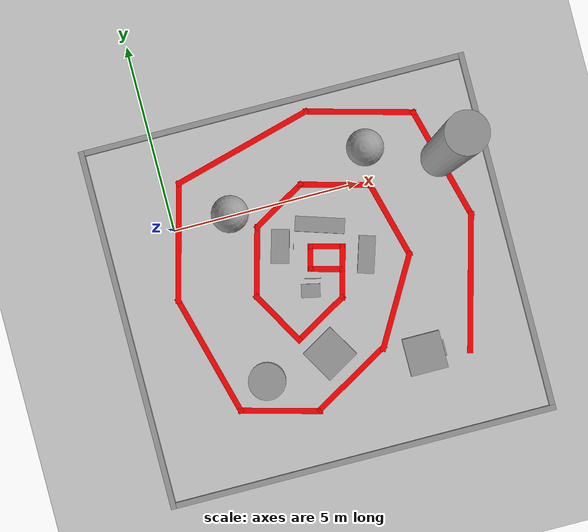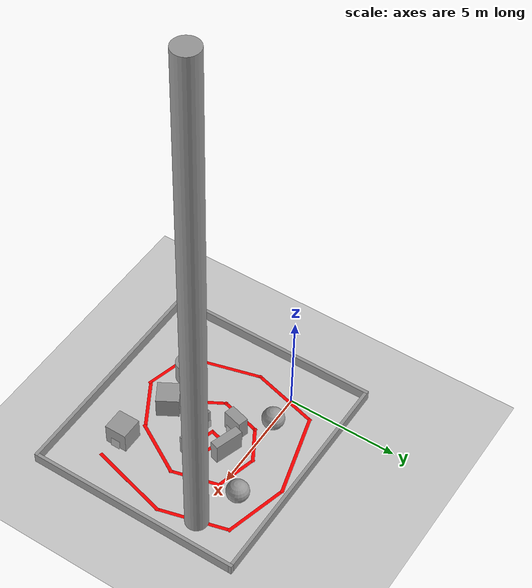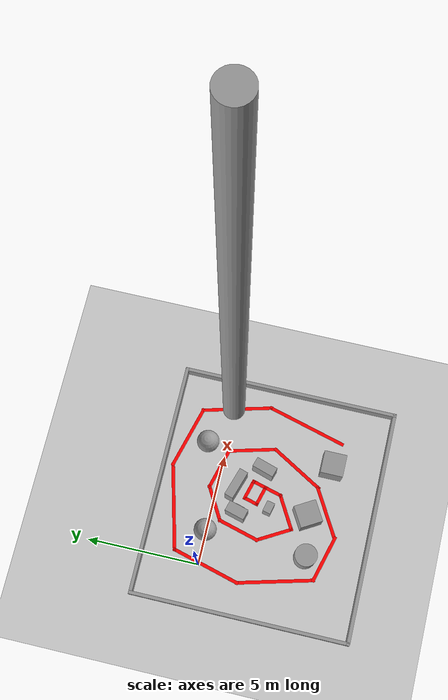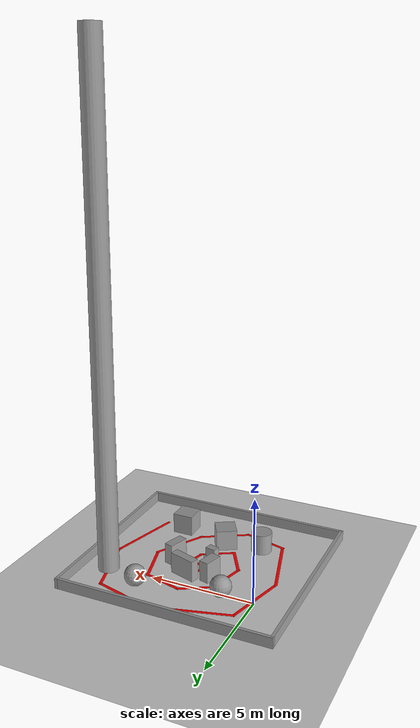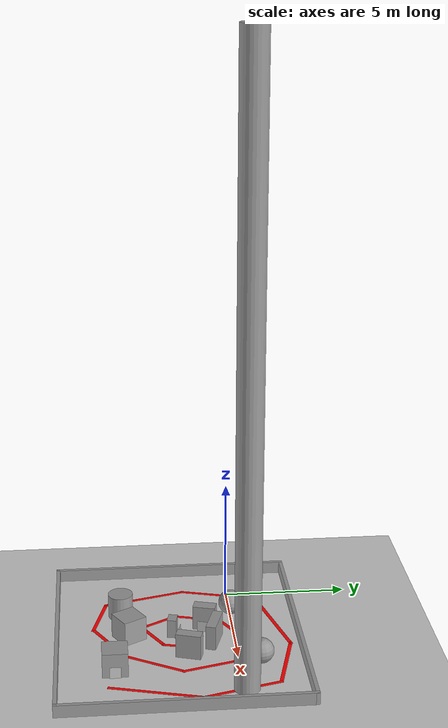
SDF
<sdf version="1.7">
 <world name="default">
  <light name="sun" type="directional">
   <pose>0 0 10 0 -0 0</pose>
   <diffuse>0.8 0.8 0.8 1</diffuse>
   <specular>0.2 0.2 0.2 1</specular>
   <attenuation>
    <range>1000</range>
    <constant>0.9</constant>
    <linear>0.01</linear>
    <quadratic>0.001</quadratic>
   </attenuation>
   <direction>-0.5 0.1 -0.9</direction>
   <spot><inner_angle>0</inner_angle><outer_angle>0</outer_angle><falloff>0</falloff></spot>
  </light>
  <model name="ground_plane">
   <static>1</static>
   <link name="link">
    <collision name="collision">
     <geometry><plane><normal>0 0 1</normal><size>100 100</size></plane></geometry>
     <surface>
      <contact><collide_bitmask>65535</collide_bitmask></contact>
      <friction><ode><mu>100</mu><mu2>50</mu2></ode></friction>
     </surface>
    </collision>
    <visual name="visual">
     <cast_shadows>0</cast_shadows>
     <geometry><plane><normal>0 0 1</normal><size>100 100</size></plane></geometry>
     <material>
      <script><uri>file://media/materials/scripts/gazebo.material</uri><name>Gazebo/Grey</name></script>
     </material>
    </visual>
   </link>
  </model>
  <gravity>0 0 -9.8</gravity>
  <magnetic_field>6e-06 2.3e-05 -4.2e-05</magnetic_field>
  <atmosphere type="adiabatic"/>
  <physics type="ode">
   <max_step_size>0.001</max_step_size>
   <real_time_factor>1</real_time_factor>
   <real_time_update_rate>1000</real_time_update_rate>
  </physics>
  <scene><ambient>0.4 0.4 0.4 1</ambient><background>0.7 0.7 0.7 1</background><shadows>1</shadows></scene>
  <spherical_coordinates>
   <surface_model>EARTH_WGS84</surface_model>
   <latitude_deg>0</latitude_deg>
   <longitude_deg>0</longitude_deg>
   <elevation>0</elevation>
   <heading_deg>0</heading_deg>
  </spherical_coordinates>
  <model name="qr_map_deneme-son">
   <pose>3.71956 -2.23325 0 0 -0 0</pose>
   <link name="Wall_10">
    <collision name="Wall_10_Collision"><geometry><box><size>3.75 0.15 0.001</size></box></geometry></collision>
    <visual name="Wall_10_Visual">
     <geometry><box><size>3.75 0.15 0.001</size></box></geometry>
     <material>
      <script><uri>file://media/materials/scripts/gazebo.material</uri><name>Gazebo/Grey</name></script>
      <ambient>1 0 0 1</ambient>
     </material>
     <meta><layer>0</layer></meta>
    </visual>
    <pose>3.51997 -1.05747 0 0 -0 1.309</pose>
   </link>
   <link name="Wall_11">
    <collision name="Wall_11_Collision"><geometry><box><size>3.25 0.15 0.001</size></box></geometry></collision>
    <visual name="Wall_11_Visual">
     <geometry><box><size>3.25 0.15 0.001</size></box></geometry>
     <material>
      <script><uri>file://media/materials/scripts/gazebo.material</uri><name>Gazebo/Grey</name></script>
      <ambient>1 0 0 1</ambient>
     </material>
     <meta><layer>0</layer></meta>
    </visual>
    <pose>3.58468 2.17838 0 0 -0 1.8326</pose>
   </link>
   <link name="Wall_12">
    <collision name="Wall_12_Collision"><geometry><box><size>3 0.15 0.001</size></box></geometry></collision>
    <visual name="Wall_12_Visual">
     <geometry><box><size>3 0.15 0.001</size></box></geometry>
     <material>
      <script><uri>file://media/materials/scripts/gazebo.material</uri><name>Gazebo/Grey</name></script>
      <ambient>1 0 0 1</ambient>
     </material>
     <meta><layer>0</layer></meta>
    </visual>
    <pose>1.80706 4.04438 0 0 -0 2.87979</pose>
   </link>
   <link name="Wall_13">
    <collision name="Wall_13_Collision"><geometry><box><size>4 0.15 0.001</size></box></geometry></collision>
    <visual name="Wall_13_Visual">
     <geometry><box><size>4 0.15 0.001</size></box></geometry>
     <material>
      <script><uri>file://media/materials/scripts/gazebo.material</uri><name>Gazebo/Grey</name></script>
      <ambient>1 0 0 1</ambient>
     </material>
     <meta><layer>0</layer></meta>
    </visual>
    <pose>-1.42879 3.91497 0 0 -0 -2.87979</pose>
   </link>
   <link name="Wall_14">
    <collision name="Wall_14_Collision"><geometry><box><size>3.25 0.15 0.001</size></box></geometry></collision>
    <visual name="Wall_14_Visual">
     <geometry><box><size>3.25 0.15 0.001</size></box></geometry>
     <material>
      <script><uri>file://media/materials/scripts/gazebo.material</uri><name>Gazebo/Grey</name></script>
      <ambient>1 0 0 1</ambient>
     </material>
     <meta><layer>0</layer></meta>
    </visual>
    <pose>-3.68937 1.91956 0 0 -0 -1.8326</pose>
   </link>
   <link name="Wall_15">
    <collision name="Wall_15_Collision"><geometry><box><size>3.5 0.15 0.001</size></box></geometry></collision>
    <visual name="Wall_15_Visual">
     <geometry><box><size>3.5 0.15 0.001</size></box></geometry>
     <material>
      <script><uri>file://media/materials/scripts/gazebo.material</uri><name>Gazebo/Grey</name></script>
      <ambient>1 0 0 1</ambient>
     </material>
     <meta><layer>0</layer></meta>
    </visual>
    <pose>-3.65701 -1.19555 0 0 -0 -1.309</pose>
   </link>
   <link name="Wall_20">
    <collision name="Wall_20_Collision"><geometry><box><size>2.25 0.15 0.001</size></box></geometry></collision>
    <visual name="Wall_20_Visual">
     <geometry><box><size>2.25 0.15 0.001</size></box></geometry>
     <material>
      <script><uri>file://media/materials/scripts/gazebo.material</uri><name>Gazebo/Grey</name></script>
      <ambient>1 0 0 1</ambient>
     </material>
     <meta><layer>0</layer></meta>
    </visual>
    <pose>-2.20927 -3.08523 0 0 -0 -0.261799</pose>
   </link>
   <link name="Wall_21">
    <collision name="Wall_21_Collision"><geometry><box><size>0 0.15 0.001</size></box></geometry></collision>
    <visual name="Wall_21_Visual">
     <geometry><box><size>0 0.15 0.001</size></box></geometry>
     <material>
      <script><uri>file://media/materials/scripts/gazebo.material</uri><name>Gazebo/Grey</name></script>
      <ambient>1 0 0 1</ambient>
     </material>
     <meta><layer>0</layer></meta>
    </visual>
    <pose>-0.177466 -2.76949 0 0 -0 0.523599</pose>
   </link>
   <link name="Wall_22">
    <collision name="Wall_22_Collision"><geometry><box><size>2.75 0.15 0.001</size></box></geometry></collision>
    <visual name="Wall_22_Visual">
     <geometry><box><size>2.75 0.15 0.001</size></box></geometry>
     <material>
      <script><uri>file://media/materials/scripts/gazebo.material</uri><name>Gazebo/Grey</name></script>
      <ambient>1 0 0 1</ambient>
     </material>
     <meta><layer>0</layer></meta>
    </visual>
    <pose>1.49011 -1.05616 0 0 -0 1.0472</pose>
   </link>
   <link name="Wall_23">
    <collision name="Wall_23_Collision"><geometry><box><size>2.25 0.15 0.001</size></box></geometry></collision>
    <visual name="Wall_23_Visual">
     <geometry><box><size>2.25 0.15 0.001</size></box></geometry>
     <material>
      <script><uri>file://media/materials/scripts/gazebo.material</uri><name>Gazebo/Grey</name></script>
      <ambient>1 0 0 1</ambient>
     </material>
     <meta><layer>0</layer></meta>
    </visual>
    <pose>1.86835 1.08389 0 0 -0 1.8326</pose>
   </link>
   <link name="Wall_24">
    <collision name="Wall_24_Collision"><geometry><box><size>2 0.15 0.001</size></box></geometry></collision>
    <visual name="Wall_24_Visual">
     <geometry><box><size>2 0.15 0.001</size></box></geometry>
     <material>
      <script><uri>file://media/materials/scripts/gazebo.material</uri><name>Gazebo/Grey</name></script>
      <ambient>1 0 0 1</ambient>
     </material>
     <meta><layer>0</layer></meta>
    </visual>
    <pose>0.703112 2.33752 0 0 -0 2.87979</pose>
   </link>
   <link name="Wall_25">
    <collision name="Wall_25_Collision"><geometry><box><size>1.75 0.15 0.001</size></box></geometry></collision>
    <visual name="Wall_25_Visual">
     <geometry><box><size>1.75 0.15 0.001</size></box></geometry>
     <material>
      <script><uri>file://media/materials/scripts/gazebo.material</uri><name>Gazebo/Grey</name></script>
      <ambient>1 0 0 1</ambient>
     </material>
     <meta><layer>0</layer></meta>
    </visual>
    <pose>-0.88319 2.17693 0 0 -0 -2.61799</pose>
   </link>
   <link name="Wall_26">
    <collision name="Wall_26_Collision"><geometry><box><size>2 0.15 0.001</size></box></geometry></collision>
    <visual name="Wall_26_Visual">
     <geometry><box><size>2 0.15 0.001</size></box></geometry>
     <material>
      <script><uri>file://media/materials/scripts/gazebo.material</uri><name>Gazebo/Grey</name></script>
      <ambient>1 0 0 1</ambient>
     </material>
     <meta><layer>0</layer></meta>
    </visual>
    <pose>-1.81542 0.88345 0 0 -0 -1.8326</pose>
   </link>
   <link name="Wall_27">
    <collision name="Wall_27_Collision"><geometry><box><size>1.75 0.15 0.001</size></box></geometry></collision>
    <visual name="Wall_27_Visual">
     <geometry><box><size>1.75 0.15 0.001</size></box></geometry>
     <material>
      <script><uri>file://media/materials/scripts/gazebo.material</uri><name>Gazebo/Grey</name></script>
      <ambient>1 0 0 1</ambient>
     </material>
     <meta><layer>0</layer></meta>
    </visual>
    <pose>-1.65482 -0.702852 0 0 -0 -1.0472</pose>
   </link>
   <link name="Wall_28">
    <collision name="Wall_28_Collision"><geometry><box><size>1.75 0.15 0.001</size></box></geometry></collision>
    <visual name="Wall_28_Visual">
     <geometry><box><size>1.75 0.15 0.001</size></box></geometry>
     <material>
      <script><uri>file://media/materials/scripts/gazebo.material</uri><name>Gazebo/Grey</name></script>
      <ambient>1 0 0 1</ambient>
     </material>
     <meta><layer>0</layer></meta>
    </visual>
    <pose>-0.562005 -0.995672 0 0 -0 0.523599</pose>
   </link>
   <link name="Wall_29">
    <collision name="Wall_29_Collision"><geometry><box><size>1.5 0.15 0.001</size></box></geometry></collision>
    <visual name="Wall_29_Visual">
     <geometry><box><size>1.5 0.15 0.001</size></box></geometry>
     <material>
      <script><uri>file://media/materials/scripts/gazebo.material</uri><name>Gazebo/Grey</name></script>
      <ambient>1 0 0 1</ambient>
     </material>
     <meta><layer>0</layer></meta>
    </visual>
    <pose>0.305518 0.056328 0 0 -0 1.309</pose>
   </link>
   <link name="Wall_30">
    <collision name="Wall_30_Collision"><geometry><box><size>1 0.15 0.001</size></box></geometry></collision>
    <visual name="Wall_30_Visual">
     <geometry><box><size>1 0.15 0.001</size></box></geometry>
     <material>
      <script><uri>file://media/materials/scripts/gazebo.material</uri><name>Gazebo/Grey</name></script>
      <ambient>1 0 0 1</ambient>
     </material>
     <meta><layer>0</layer></meta>
    </visual>
    <pose>0.069703 0.818326 0 0 -0 2.87979</pose>
   </link>
   <link name="Wall_31">
    <collision name="Wall_31_Collision"><geometry><box><size>0.75 0.15 0.001</size></box></geometry></collision>
    <visual name="Wall_31_Visual">
     <geometry><box><size>0.75 0.15 0.001</size></box></geometry>
     <material>
      <script><uri>file://media/materials/scripts/gazebo.material</uri><name>Gazebo/Grey</name></script>
      <ambient>1 0 0 1</ambient>
     </material>
     <meta><layer>0</layer></meta>
    </visual>
    <pose>-0.418462 0.638546 0 0 -0 -1.8326</pose>
   </link>
   <link name="Wall_34">
    <collision name="Wall_34_Collision"><geometry><box><size>1 0.15 0.001</size></box></geometry></collision>
    <visual name="Wall_34_Visual">
     <geometry><box><size>1 0.15 0.001</size></box></geometry>
     <material>
      <script><uri>file://media/materials/scripts/gazebo.material</uri><name>Gazebo/Grey</name></script>
      <ambient>1 0 0 1</ambient>
     </material>
     <meta><layer>0</layer></meta>
    </visual>
    <pose>-0.085589 0.23877 0 0 -0 -0.261799</pose>
   </link>
   <link name="Wall_5">
    <collision name="Wall_5_Collision">
     <geometry><box><size>9.75 0.15 0.5</size></box></geometry>
     <pose>0 0 0.25 0 -0 0</pose>
    </collision>
    <visual name="Wall_5_Visual">
     <pose>0 0 0.25 0 -0 0</pose>
     <geometry><box><size>9.75 0.15 0.5</size></box></geometry>
     <material>
      <script><uri>file://media/materials/scripts/gazebo.material</uri><name>Gazebo/Grey</name></script>
      <ambient>1 1 1 1</ambient>
     </material>
     <meta><layer>0</layer></meta>
    </visual>
    <pose>-5.5735 0 0 0 -0 -1.5708</pose>
   </link>
   <link name="Wall_6">
    <collision name="Wall_6_Collision">
     <geometry><box><size>10.5 0.15 0.5</size></box></geometry>
     <pose>0 0 0.25 0 -0 0</pose>
    </collision>
    <visual name="Wall_6_Visual">
     <pose>0 0 0.25 0 -0 0</pose>
     <geometry><box><size>10.5 0.15 0.5</size></box></geometry>
     <material>
      <script><uri>file://media/materials/scripts/gazebo.material</uri><name>Gazebo/Grey</name></script>
      <ambient>1 1 1 1</ambient>
     </material>
     <meta><layer>0</layer></meta>
    </visual>
    <pose>-0.398499 -4.8 0 0 -0 0</pose>
   </link>
   <link name="Wall_7">
    <collision name="Wall_7_Collision">
     <geometry><box><size>9.75 0.15 0.5</size></box></geometry>
     <pose>0 0 0.25 0 -0 0</pose>
    </collision>
    <visual name="Wall_7_Visual">
     <pose>0 0 0.25 0 -0 0</pose>
     <geometry><box><size>9.75 0.15 0.5</size></box></geometry>
     <material>
      <script><uri>file://media/materials/scripts/gazebo.material</uri><name>Gazebo/Grey</name></script>
      <ambient>1 1 1 1</ambient>
     </material>
     <meta><layer>0</layer></meta>
    </visual>
    <pose>4.7765 0 0 0 -0 1.5708</pose>
   </link>
   <link name="Wall_8">
    <collision name="Wall_8_Collision">
     <geometry><box><size>10.5 0.15 0.5</size></box></geometry>
     <pose>0 0 0.25 0 -0 0</pose>
    </collision>
    <visual name="Wall_8_Visual">
     <pose>0 0 0.25 0 -0 0</pose>
     <geometry><box><size>10.5 0.15 0.5</size></box></geometry>
     <material>
      <script><uri>file://media/materials/scripts/gazebo.material</uri><name>Gazebo/Grey</name></script>
      <ambient>1 1 1 1</ambient>
     </material>
     <meta><layer>0</layer></meta>
    </visual>
    <pose>-0.398499 4.8 0 0 -0 3.14159</pose>
   </link>
   <static>1</static>
  </model>
  <model name="qr-map-1">
   <pose>3.56011 -4.22539 0 0 -0 0</pose>
   <link name="Wall_0">
    <collision name="Wall_0_Collision"><geometry><box><size>2.5 0.15 0.001</size></box></geometry></collision>
    <visual name="Wall_0_Visual">
     <geometry><box><size>2.5 0.15 0.001</size></box></geometry>
     <material>
      <script><uri>file://media/materials/scripts/gazebo.material</uri><name>Gazebo/Grey</name></script>
      <ambient>1 0 0 1</ambient>
     </material>
     <meta><layer>0</layer></meta>
    </visual>
    <pose>-0 -0.737256 0 0 -0 0.523633</pose>
   </link>
   <static>1</static>
  </model>
  <model name="unit_sphere">
   <pose>1.53402 0.052119 0.5 0 -0 0</pose>
   <link name="link">
    <inertial>
     <mass>1</mass>
     <inertia><ixx>0.1</ixx><ixy>0</ixy><ixz>0</ixz><iyy>0.1</iyy><iyz>0</iyz><izz>0.1</izz></inertia>
    </inertial>
    <collision name="collision"><geometry><sphere><radius>0.5</radius></sphere></geometry></collision>
    <visual name="visual">
     <geometry><sphere><radius>0.5</radius></sphere></geometry>
     <material>
      <script><name>Gazebo/Grey</name><uri>file://media/materials/scripts/gazebo.material</uri></script>
     </material>
    </visual>
   </link>
  </model>
  <model name="unit_cylinder">
   <pose>1.3793 -4.45872 0.499996 3e-06 1e-06 -0</pose>
   <link name="link">
    <inertial>
     <mass>1</mass>
     <inertia><ixx>0.145833</ixx><ixy>0</ixy><ixz>0</ixz><iyy>0.145833</iyy><iyz>0</iyz><izz>0.125</izz></inertia>
    </inertial>
    <collision name="collision">
     <geometry><cylinder><radius>0.5</radius><length>1</length></cylinder></geometry>
    </collision>
    <visual name="visual">
     <geometry><cylinder><radius>0.5</radius><length>1</length></cylinder></geometry>
     <material>
      <script><name>Gazebo/Grey</name><uri>file://media/materials/scripts/gazebo.material</uri></script>
     </material>
    </visual>
   </link>
  </model>
  <model name="unit_sphere_0">
   <pose>5.42802 0.853846 0.5 0 -0 0</pose>
   <link name="link">
    <inertial>
     <mass>1</mass>
     <inertia><ixx>0.1</ixx><ixy>0</ixy><ixz>0</ixz><iyy>0.1</iyy><iyz>0</iyz><izz>0.1</izz></inertia>
    </inertial>
    <collision name="collision"><geometry><sphere><radius>0.5</radius></sphere></geometry></collision>
    <visual name="visual">
     <geometry><sphere><radius>0.5</radius></sphere></geometry>
     <material>
      <script><name>Gazebo/Grey</name><uri>file://media/materials/scripts/gazebo.material</uri></script>
     </material>
    </visual>
   </link>
  </model>
  <model name="unit_box">
   <pose>5.58373 -4.79193 0.499995 -1e-05 0 0</pose>
   <link name="link">
    <inertial>
     <mass>1</mass>
     <inertia>
      <ixx>0.166667</ixx>
      <ixy>0</ixy>
      <ixz>0</ixz>
      <iyy>0.166667</iyy>
      <iyz>0</iyz>
      <izz>0.166667</izz>
     </inertia>
    </inertial>
    <collision name="collision"><geometry><box><size>1 1 1</size></box></geometry></collision>
    <visual name="visual">
     <geometry><box><size>1 1 1</size></box></geometry>
     <material>
      <script><name>Gazebo/Grey</name><uri>file://media/materials/scripts/gazebo.material</uri></script>
     </material>
    </visual>
   </link>
  </model>
  <model name="unit_box_0">
   <pose>2.60485 -1.10843 0.5 0 -0 -0.268191</pose>
   <link name="link">
    <inertial>
     <mass>1</mass>
     <inertia>
      <ixx>0.166667</ixx>
      <ixy>0</ixy>
      <ixz>0</ixz>
      <iyy>0.166667</iyy>
      <iyz>0</iyz>
      <izz>0.166667</izz>
     </inertia>
    </inertial>
    <collision name="collision"><geometry><box><size>0.479257 0.903183 1</size></box></geometry></collision>
    <visual name="visual">
     <geometry><box><size>0.479257 0.903183 1</size></box></geometry>
     <material>
      <script><name>Gazebo/Grey</name><uri>file://media/materials/scripts/gazebo.material</uri></script>
     </material>
    </visual>
   </link>
  </model>
  <model name="qr_HikRaclabQr">
   <static>1</static>
   <link name="qr_HikRaclabQr_link">
    <pose>0 0 0.001 0 -0 1.5708</pose>
    <visual name="visual_qr_HikRaclabQr">
     <cast_shadows>0</cast_shadows>
     <geometry><box><size>0.44 0.44 0.001</size></box></geometry>
     <material>
      <script>
       <uri>model://qr_HikRaclabQr/materials/scripts</uri>
       <uri>model://qr_HikRaclabQr/materials/textures</uri>
       <name>qr_HikRaclabQr/qr_HikRaclabQr</name>
      </script>
     </material>
    </visual>
   </link>
   <pose>6.12326 -4.78945 0.230221 3e-06 1.46968 7e-06</pose>
  </model>
  <model name="unit_box_1">
   <pose>3.16265 -4.17117 0.5 0 -0 0.533641</pose>
   <link name="link">
    <inertial>
     <mass>1</mass>
     <inertia>
      <ixx>0.166667</ixx>
      <ixy>0</ixy>
      <ixz>0</ixz>
      <iyy>0.166667</iyy>
      <iyz>0</iyz>
      <izz>0.166667</izz>
     </inertia>
    </inertial>
    <collision name="collision"><geometry><box><size>1 1 1</size></box></geometry></collision>
    <visual name="visual">
     <geometry><box><size>1 1 1</size></box></geometry>
     <material>
      <script><name>Gazebo/Grey</name><uri>file://media/materials/scripts/gazebo.material</uri></script>
     </material>
    </visual>
   </link>
  </model>
  <model name="qr_qrMapSonKonum">
   <static>1</static>
   <link name="qr_qrMapSonKonum_link">
    <pose>0 0 0.001 0 -0 1.5708</pose>
    <visual name="visual_qr_qrMapSonKonum">
     <cast_shadows>0</cast_shadows>
     <geometry><box><size>0.44 0.44 0.001</size></box></geometry>
     <material>
      <script>
       <uri>model://qr_qrMapSonKonum/materials/scripts</uri>
       <uri>model://qr_qrMapSonKonum/materials/textures</uri>
       <name>qr_qrMapSonKonum/qr_qrMapSonKonum</name>
      </script>
     </material>
    </visual>
   </link>
   <pose>2.93386 -1.21232 0.208366 -1.28758 1.55689 -1.57546</pose>
  </model>
  <model name="qr_qrMapSonKonum_clone">
   <static>1</static>
   <link name="qr_qrMapSonKonum_link">
    <pose>0 0 0.001 0 -0 1.5708</pose>
    <visual name="visual_qr_qrMapSonKonum">
     <cast_shadows>0</cast_shadows>
     <geometry><box><size>0.44 0.44 0.001</size></box></geometry>
     <material>
      <script>
       <uri>model://qr_qrMapSonKonum/materials/scripts</uri>
       <uri>model://qr_qrMapSonKonum/materials/textures</uri>
       <name>qr_qrMapSonKonum/qr_qrMapSonKonum</name>
      </script>
     </material>
    </visual>
   </link>
   <pose>3.22706 -2.14678 0.218224 0.321056 1.52173 1.66688</pose>
  </model>
  <model name="unit_box_2">
   <pose>3.08841 -2.43865 0.383305 0 -0 -0.21406</pose>
   <link name="link">
    <inertial>
     <mass>1</mass>
     <inertia>
      <ixx>0.166667</ixx>
      <ixy>0</ixy>
      <ixz>0</ixz>
      <iyy>0.166667</iyy>
      <iyz>0</iyz>
      <izz>0.166667</izz>
     </inertia>
    </inertial>
    <collision name="collision">
     <geometry><box><size>0.502939 0.361602 0.766611</size></box></geometry>
    </collision>
    <visual name="visual">
     <geometry><box><size>0.502939 0.361602 0.766611</size></box></geometry>
     <material>
      <script><name>Gazebo/Grey</name><uri>file://media/materials/scripts/gazebo.material</uri></script>
     </material>
    </visual>
   </link>
  </model>
  <model name="unit_box_3">
   <pose>3.75664 -0.820991 0.5 0 0 -0.30805</pose>
   <link name="link">
    <inertial>
     <mass>1</mass>
     <inertia>
      <ixx>0.166667</ixx>
      <ixy>0</ixy>
      <ixz>0</ixz>
      <iyy>0.166667</iyy>
      <iyz>0</iyz>
      <izz>0.166667</izz>
     </inertia>
    </inertial>
    <collision name="collision"><geometry><box><size>1.31554 0.404647 1</size></box></geometry></collision>
    <visual name="visual">
     <geometry><box><size>1.31554 0.404647 1</size></box></geometry>
     <material>
      <script><name>Gazebo/Grey</name><uri>file://media/materials/scripts/gazebo.material</uri></script>
     </material>
    </visual>
   </link>
  </model>
  <model name="unit_box_4">
   <pose>4.74937 -1.8851 0.499999 -3e-06 4e-06 -0.30313</pose>
   <link name="link">
    <inertial>
     <mass>1</mass>
     <inertia>
      <ixx>0.166667</ixx>
      <ixy>0</ixy>
      <ixz>0</ixz>
      <iyy>0.166667</iyy>
      <iyz>0</iyz>
      <izz>0.166667</izz>
     </inertia>
    </inertial>
    <collision name="collision"><geometry><box><size>0.440467 1 1</size></box></geometry></collision>
    <visual name="visual">
     <geometry><box><size>0.440467 1 1</size></box></geometry>
     <material>
      <script><name>Gazebo/Grey</name><uri>file://media/materials/scripts/gazebo.material</uri></script>
     </material>
    </visual>
   </link>
  </model>
  <model name="unit_cylinder_0">
   <pose>7.25538 0.10744 12.0797 -0.000871 -0.000592 0.099712</pose>
   <link name="link">
    <inertial>
     <mass>1</mass>
     <inertia><ixx>0.145833</ixx><ixy>0</ixy><ixz>0</ixz><iyy>0.145833</iyy><iyz>0</iyz><izz>0.125</izz></inertia>
    </inertial>
    <collision name="collision">
     <geometry><cylinder><radius>0.5</radius><length>24.1574</length></cylinder></geometry>
    </collision>
    <visual name="visual">
     <geometry><cylinder><radius>0.5</radius><length>24.1574</length></cylinder></geometry>
     <material>
      <script><name>Gazebo/Grey</name><uri>file://media/materials/scripts/gazebo.material</uri></script>
     </material>
    </visual>
   </link>
  </model>
 </world>
</sdf>
